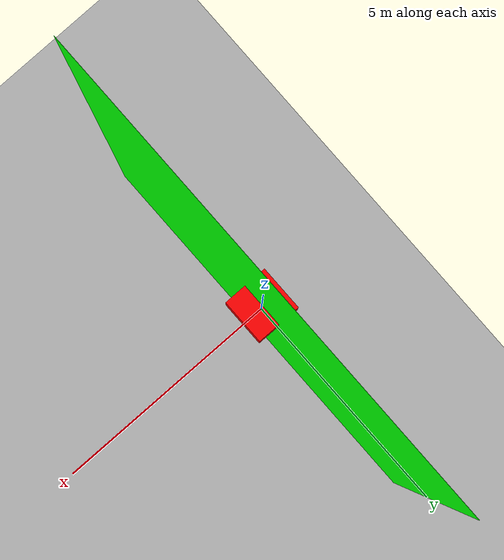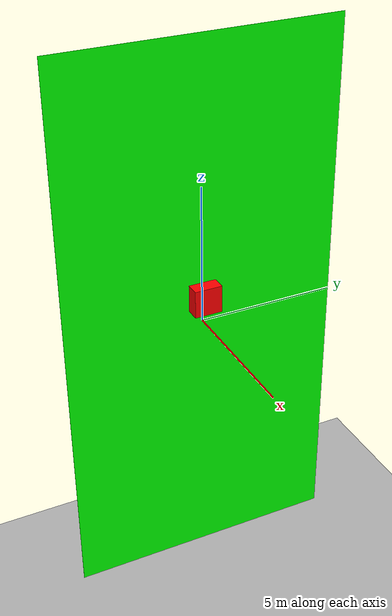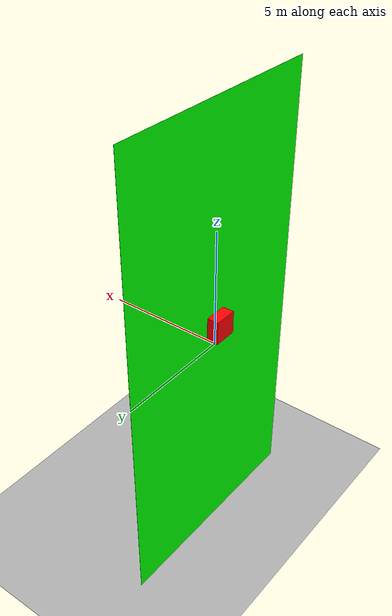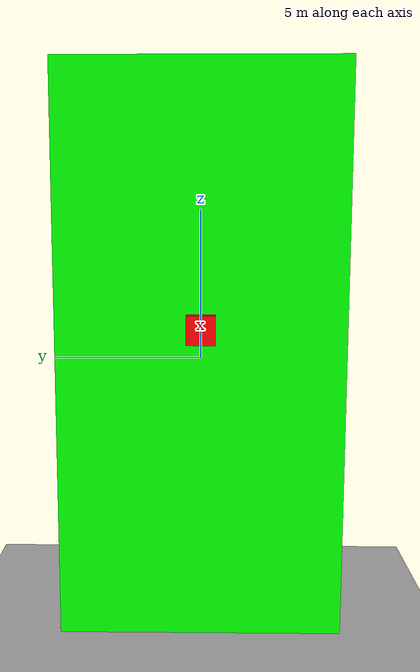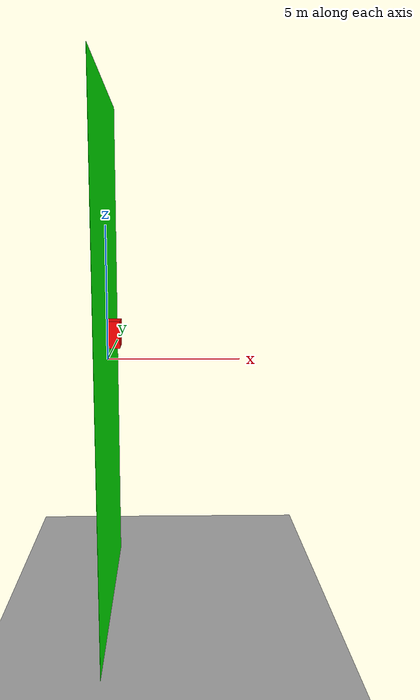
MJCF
<mujoco>
  <option gravity="0 0 -9.81" />
  <worldbody>
    <body name="object_1" pos="0 0 1">
      <geom type="box" size="0.5 0.5 0.5" density="1" rgba="1 0 0 1" />
      <joint name="object_1_joint" type="free" />
    </body>
    <body name="object_2" pos="0 0 0">
      <geom type="plane" size="5 10 0.1" rgba="0 1 0 1" friction="0.2 0.2 0.2" quat="0.5 0.5 0.5 0.5" />
    </body>
    <body name="object_3" pos="0 0 -10">
      <geom type="plane" size="30 30 0.1" rgba="0.7 0.7 0.7 1" friction="1 1 1" />
    </body>
  </worldbody>
</mujoco>
